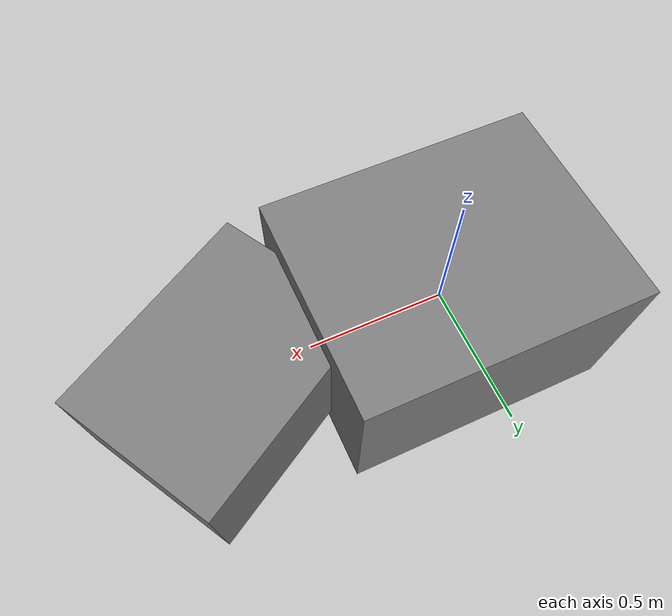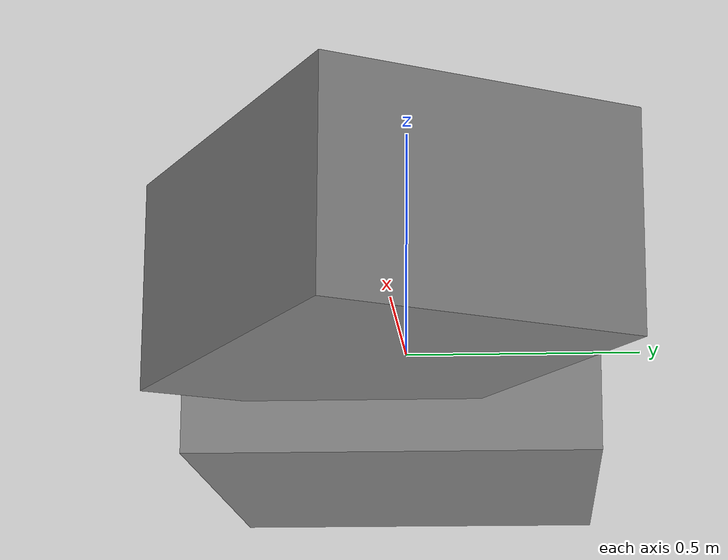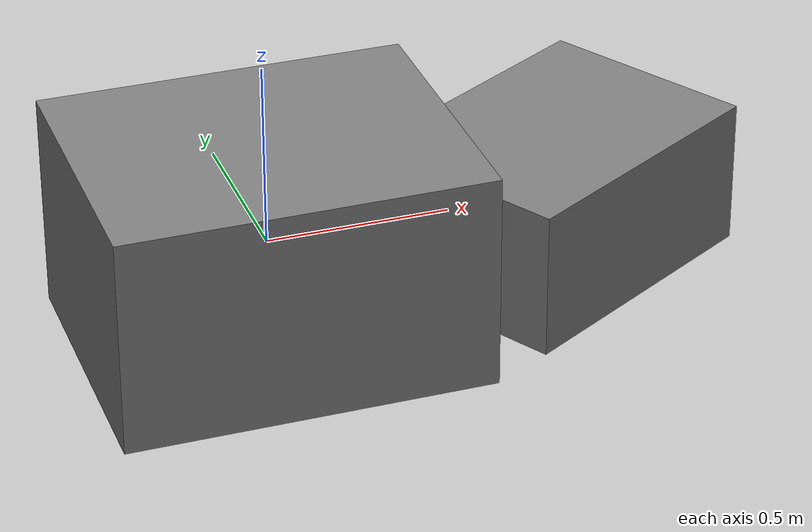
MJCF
<mujoco model="box_sym_ba">
            <option gravity="0 0 0" timestep="0.001"/>
            <worldbody>
                <body name="b" pos="0.8 0 0" euler="0 0 30">
                    <joint type="free"/>
                    <geom type="box" size="0.4 0.3 0.2"/>
                </body>
                <body name="a" pos="0 0 0">
                    <joint type="free"/>
                    <geom type="box" size="0.5 0.4 0.3"/>
                </body>
            </worldbody>
        </mujoco>
